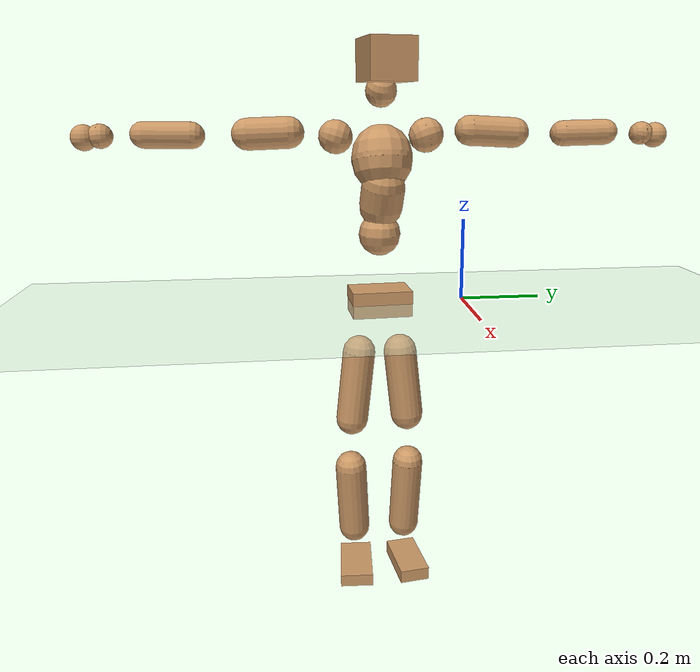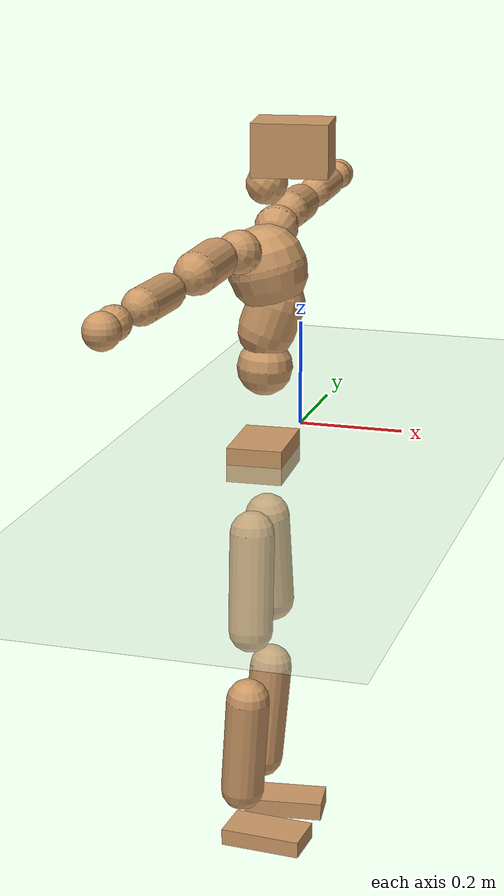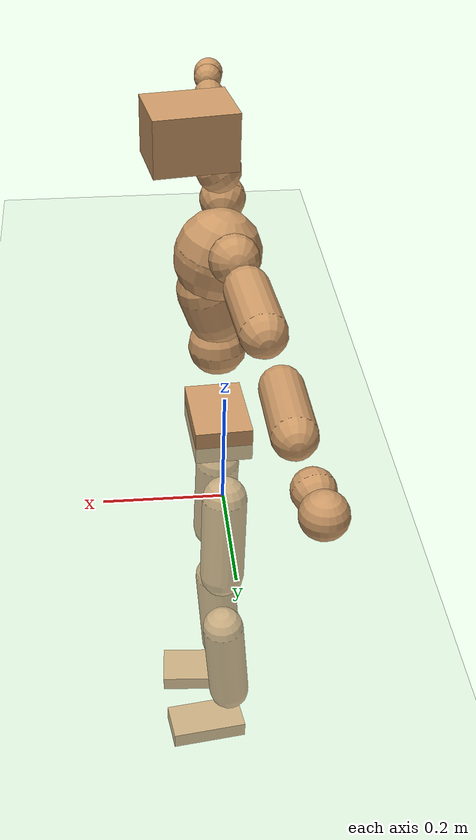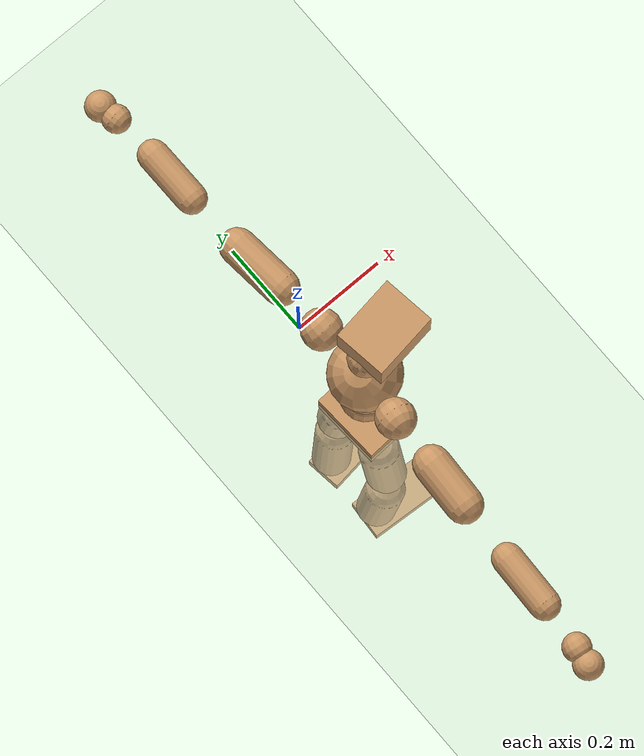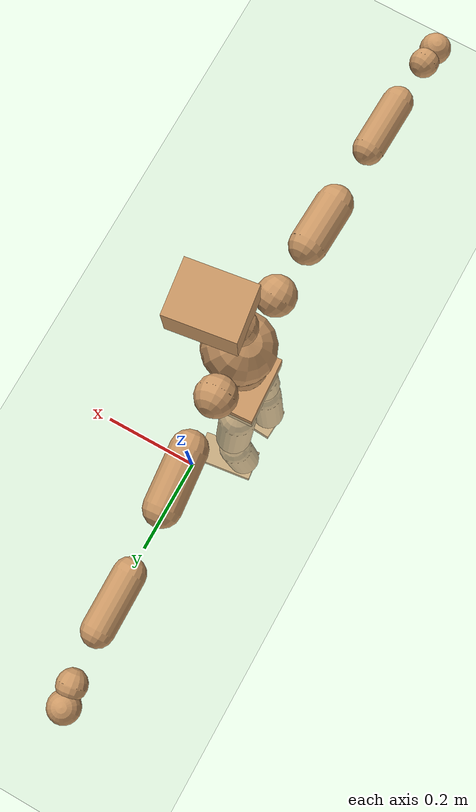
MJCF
<mujoco model="humanoid">
  <compiler coordinate="local" angle="radian"/>
  <default>
    <joint damping="0.0" armature="0.01" stiffness="0.0" limited="true"/>
    <geom conaffinity="1" condim="3" contype="7" margin="0.001" rgba="0.8 0.6 .4 1"/>
  </default>
  <asset>
    <texture type="skybox" builtin="gradient" rgb1=".4 .5 .6" rgb2="0 0 0" width="100" height="100"/>
    <texture builtin="flat" height="1278" mark="cross" markrgb="1 1 1" name="texgeom" random="0.01" rgb1="0.8 0.6 0.4" rgb2="0.8 0.6 0.4" type="cube" width="127"/>
    <texture builtin="checker" height="100" name="texplane" rgb1="0 0 0" rgb2="0.8 0.8 0.8" type="2d" width="100"/>
    <material name="MatPlane" reflectance="0.5" shininess="1" specular="1" texrepeat="60 60" texture="texplane"/>
    <material name="geom" texture="texgeom" texuniform="true"/>
  </asset>
  <worldbody>
    <light cutoff="100" diffuse="1 1 1" dir="-0 0 -1.3" directional="true" exponent="1" pos="0 0 1.3" specular=".1 .1 .1"/>
    <geom conaffinity="1" condim="3" name="floor" pos="0 0 0" rgba="0.8 0.9 0.8 1" size="100 100 .2" type="plane" material="MatPlane"/>
    <body name="Pelvis" pos="-0.0063 -0.2075 0.0082">
      <freejoint name="Pelvis"/>
      <geom type="box" contype="1" conaffinity="1" density="5359.375543" pos="-0.0059 -0.0003 -0.0104" size="0.0514 0.0744 0.032" quat="0.9996 0.0000 0.0000 0.0274" name="Pelvis"/>
      <body name="L_Hip" pos="-0.0167 0.0464 -0.0764">
        <joint name="L_Hip_x" type="hinge" pos="0 0 0" axis="1 0 0" stiffness="1600" damping="160" armature="0.02" range="-180.0000 180.0000"/>
        <joint name="L_Hip_y" type="hinge" pos="0 0 0" axis="0 1 0" stiffness="1600" damping="160" armature="0.02" range="-180.0000 180.0000"/>
        <joint name="L_Hip_z" type="hinge" pos="0 0 0" axis="0 0 1" stiffness="1600" damping="160" armature="0.02" range="-180.0000 180.0000"/>
        <geom type="capsule" contype="1" conaffinity="1" density="2040.816327" size="0.0421" fromto="0.0018 0.0075 -0.0717 0.0061 0.0261 -0.2486" name="L_Hip"/>
        <body name="L_Knee" pos="0.0079 0.0336 -0.3202">
          <joint name="L_Knee_x" type="hinge" pos="0 0 0" axis="1 0 0" stiffness="1600" damping="160" armature="0.02" range="-180.0000 180.0000"/>
          <joint name="L_Knee_y" type="hinge" pos="0 0 0" axis="0 1 0" stiffness="1600" damping="160" armature="0.02" range="-180.0000 180.0000"/>
          <joint name="L_Knee_z" type="hinge" pos="0 0 0" axis="0 0 1" stiffness="1600" damping="160" armature="0.02" range="-180.0000 180.0000"/>
          <geom type="capsule" contype="1" conaffinity="1" density="1234.567901" size="0.0406" fromto="-0.0058 -0.0028 -0.0703 -0.0221 -0.0105 -0.2669" name="L_Knee"/>
          <body name="L_Ankle" pos="-0.028 -0.0132 -0.3372">
            <joint name="L_Ankle_x" type="hinge" pos="0 0 0" axis="1 0 0" stiffness="1600" damping="160" armature="0.02" range="-180.0000 180.0000"/>
            <joint name="L_Ankle_y" type="hinge" pos="0 0 0" axis="0 1 0" stiffness="1600" damping="160" armature="0.02" range="-180.0000 180.0000"/>
            <joint name="L_Ankle_z" type="hinge" pos="0 0 0" axis="0 0 1" stiffness="1600" damping="160" armature="0.02" range="-180.0000 180.0000"/>
            <geom type="box" contype="1" conaffinity="1" density="1000" pos="0.0538 0.0070 -0.0243" size="0.0761 0.039 0.0171" quat="0.9979 0.0000 0.0000 0.0643" name="L_Ankle"/>
            <body name="L_Toe" pos="0.1076 0.0139 -0.0487">
              <joint name="L_Toe_x" type="hinge" pos="0 0 0" axis="1 0 0" stiffness="1000" damping="100" armature="0.02" range="-180.0000 180.0000"/>
              <joint name="L_Toe_y" type="hinge" pos="0 0 0" axis="0 1 0" stiffness="1000" damping="100" armature="0.02" range="-180.0000 180.0000"/>
              <joint name="L_Toe_z" type="hinge" pos="0 0 0" axis="0 0 1" stiffness="1000" damping="100" armature="0.02" range="-180.0000 180.0000"/>
              <geom type="box" contype="1" conaffinity="1" density="8812418.138296" pos="0.0000 0.0000 0.0258" size="0.0008 0.002 0.0009" quat="0.9974 0.0000 0.0000 0.0721" name="L_Toe"/>
            </body>
          </body>
        </body>
      </body>
      <body name="R_Hip" pos="-0.0131 -0.0448 -0.0752">
        <joint name="R_Hip_x" type="hinge" pos="0 0 0" axis="1 0 0" stiffness="1600" damping="160" armature="0.02" range="-180.0000 180.0000"/>
        <joint name="R_Hip_y" type="hinge" pos="0 0 0" axis="0 1 0" stiffness="1600" damping="160" armature="0.02" range="-180.0000 180.0000"/>
        <joint name="R_Hip_z" type="hinge" pos="0 0 0" axis="0 0 1" stiffness="1600" damping="160" armature="0.02" range="-180.0000 180.0000"/>
        <geom type="capsule" contype="1" conaffinity="1" density="2040.816327" size="0.0415" fromto="0.0010 -0.0079 -0.0711 0.0037 -0.0284 -0.2566" name="R_Hip"/>
        <body name="R_Knee" pos="0.0047 -0.0363 -0.3277">
          <joint name="R_Knee_x" type="hinge" pos="0 0 0" axis="1 0 0" stiffness="1600" damping="160" armature="0.02" range="-180.0000 180.0000"/>
          <joint name="R_Knee_y" type="hinge" pos="0 0 0" axis="0 1 0" stiffness="1600" damping="160" armature="0.02" range="-180.0000 180.0000"/>
          <joint name="R_Knee_z" type="hinge" pos="0 0 0" axis="0 0 1" stiffness="1600" damping="160" armature="0.02" range="-180.0000 180.0000"/>
          <geom type="capsule" contype="1" conaffinity="1" density="1234.567901" size="0.0412" fromto="-0.0054 0.0032 -0.0709 -0.0200 0.0118 -0.2628" name="R_Knee"/>
          <body name="R_Ankle" pos="-0.0254 0.015 -0.3338">
            <joint name="R_Ankle_x" type="hinge" pos="0 0 0" axis="1 0 0" stiffness="1600" damping="160" armature="0.02" range="-180.0000 180.0000"/>
            <joint name="R_Ankle_y" type="hinge" pos="0 0 0" axis="0 1 0" stiffness="1600" damping="160" armature="0.02" range="-180.0000 180.0000"/>
            <joint name="R_Ankle_z" type="hinge" pos="0 0 0" axis="0 0 1" stiffness="1600" damping="160" armature="0.02" range="-180.0000 180.0000"/>
            <geom type="box" contype="1" conaffinity="1" density="999.999981" pos="0.0549 -0.0036 -0.0193" size="0.0775 0.0424 0.016" quat="0.9995 0.0000 0.0000 -0.0325" name="R_Ankle"/>
            <body name="R_Toe" pos="0.1098 -0.0071 -0.0387">
              <joint name="R_Toe_x" type="hinge" pos="0 0 0" axis="1 0 0" stiffness="1000" damping="100" armature="0.02" range="-180.0000 180.0000"/>
              <joint name="R_Toe_y" type="hinge" pos="0 0 0" axis="0 1 0" stiffness="1000" damping="100" armature="0.02" range="-180.0000 180.0000"/>
              <joint name="R_Toe_z" type="hinge" pos="0 0 0" axis="0 0 1" stiffness="1000" damping="100" armature="0.02" range="-180.0000 180.0000"/>
              <geom type="box" contype="1" conaffinity="1" density="8868704.570627" pos="0.0000 0.0000 0.0227" size="0.0008 0.002 0.001" quat="0.9997 0.0000 0.0000 -0.0230" name="R_Toe"/>
            </body>
          </body>
        </body>
      </body>
      <body name="Torso" pos="-0.0057 -0.0036 0.0891">
        <joint name="Torso_x" type="hinge" pos="0 0 0" axis="1 0 0" stiffness="2000" damping="200" armature="0.02" range="-180.0000 180.0000"/>
        <joint name="Torso_y" type="hinge" pos="0 0 0" axis="0 1 0" stiffness="2000" damping="200" armature="0.02" range="-180.0000 180.0000"/>
        <joint name="Torso_z" type="hinge" pos="0 0 0" axis="0 0 1" stiffness="2000" damping="200" armature="0.02" range="-180.0000 180.0000"/>
        <geom type="capsule" contype="1" conaffinity="1" density="2040.816327" size="0.0512" fromto="0.0026 0.0032 0.0683 0.0027 0.0032 0.0703" name="Torso"/>
        <body name="Spine" pos="0.0053 0.0064 0.1387">
          <joint name="Spine_x" type="hinge" pos="0 0 0" axis="1 0 0" stiffness="2000" damping="200" armature="0.02" range="-180.0000 180.0000"/>
          <joint name="Spine_y" type="hinge" pos="0 0 0" axis="0 1 0" stiffness="2000" damping="200" armature="0.02" range="-180.0000 180.0000"/>
          <joint name="Spine_z" type="hinge" pos="0 0 0" axis="0 0 1" stiffness="2000" damping="200" armature="0.02" range="-180.0000 180.0000"/>
          <geom type="capsule" contype="1" conaffinity="1" density="2040.816327" size="0.0524" fromto="0.0172 0.0041 0.0493 -0.0007 -0.0002 -0.0020" name="Spine"/>
          <body name="Chest" pos="0.0165 0.0039 0.0473">
            <joint name="Chest_x" type="hinge" pos="0 0 0" axis="1 0 0" stiffness="2000" damping="200" armature="0.02" range="-180.0000 180.0000"/>
            <joint name="Chest_y" type="hinge" pos="0 0 0" axis="0 1 0" stiffness="2000" damping="200" armature="0.02" range="-180.0000 180.0000"/>
            <joint name="Chest_z" type="hinge" pos="0 0 0" axis="0 0 1" stiffness="2000" damping="200" armature="0.02" range="-180.0000 180.0000"/>
            <geom type="capsule" contype="1" conaffinity="1" density="2040.816327" size="0.073" fromto="-0.0183 -0.0015 0.0707 -0.0153 -0.0012 0.0592" name="Chest"/>
            <body name="Neck" pos="-0.0388 -0.006 0.1853">
              <joint name="Neck_x" type="hinge" pos="0 0 0" axis="1 0 0" stiffness="1000" damping="100" armature="0.02" range="-180.0000 180.0000"/>
              <joint name="Neck_y" type="hinge" pos="0 0 0" axis="0 1 0" stiffness="1000" damping="100" armature="0.02" range="-180.0000 180.0000"/>
              <joint name="Neck_z" type="hinge" pos="0 0 0" axis="0 0 1" stiffness="1000" damping="100" armature="0.02" range="-180.0000 180.0000"/>
              <geom type="capsule" contype="1" conaffinity="1" density="1000" size="0.0369" fromto="0.0221 0.0023 0.0312 0.0233 0.0024 0.0329" name="Neck"/>
              <body name="Head" pos="0.0454 0.0047 0.0641">
                <joint name="Head_x" type="hinge" pos="0 0 0" axis="1 0 0" stiffness="1000" damping="100" armature="0.02" range="-180.0000 180.0000"/>
                <joint name="Head_y" type="hinge" pos="0 0 0" axis="0 1 0" stiffness="1000" damping="100" armature="0.02" range="-180.0000 180.0000"/>
                <joint name="Head_z" type="hinge" pos="0 0 0" axis="0 0 1" stiffness="1000" damping="100" armature="0.02" range="-180.0000 180.0000"/>
                <geom type="box" contype="1" conaffinity="1" density="2249.999958" pos="0.0237 0.0033 0.0331" size="0.0682 0.0539 0.0471" quat="0.9976 0.0000 0.0000 0.0699" name="Head"/>
              </body>
            </body>
            <body name="L_Thorax" pos="-0.0303 0.0648 0.1035">
              <joint name="L_Thorax_x" type="hinge" pos="0 0 0" axis="1 0 0" stiffness="1000" damping="100" armature="0.02" range="-180.0000 180.0000"/>
              <joint name="L_Thorax_y" type="hinge" pos="0 0 0" axis="0 1 0" stiffness="1000" damping="100" armature="0.02" range="-180.0000 180.0000"/>
              <joint name="L_Thorax_z" type="hinge" pos="0 0 0" axis="0 0 1" stiffness="1000" damping="100" armature="0.02" range="-180.0000 180.0000"/>
              <geom type="capsule" contype="1" conaffinity="1" density="1000" size="0.0408" fromto="-0.0007 0.0412 0.0132 -0.0008 0.0431 0.0138" name="L_Thorax"/>
              <body name="L_Shoulder" pos="-0.0015 0.0842 0.0271">
                <joint name="L_Shoulder_x" type="hinge" pos="0 0 0" axis="1 0 0" stiffness="1000" damping="100" armature="0.02" range="-720.0000 720.0000"/>
                <joint name="L_Shoulder_y" type="hinge" pos="0 0 0" axis="0 1 0" stiffness="1000" damping="100" armature="0.02" range="-720.0000 720.0000"/>
                <joint name="L_Shoulder_z" type="hinge" pos="0 0 0" axis="0 0 1" stiffness="1000" damping="100" armature="0.02" range="-720.0000 720.0000"/>
                <geom type="capsule" contype="1" conaffinity="1" density="1000" size="0.0359" fromto="-0.0059 0.0655 -0.0035 -0.0162 0.1791 -0.0095" name="L_Shoulder"/>
                <body name="L_Elbow" pos="-0.0222 0.2446 -0.013">
                  <joint name="L_Elbow_x" type="hinge" pos="0 0 0" axis="1 0 0" stiffness="1000" damping="100" armature="0.02" range="-720.0000 720.0000"/>
                  <joint name="L_Elbow_y" type="hinge" pos="0 0 0" axis="0 1 0" stiffness="1000" damping="100" armature="0.02" range="-720.0000 720.0000"/>
                  <joint name="L_Elbow_z" type="hinge" pos="0 0 0" axis="0 0 1" stiffness="1000" damping="100" armature="0.02" range="-720.0000 720.0000"/>
                  <geom type="capsule" contype="1" conaffinity="1" density="1000" size="0.0309" fromto="-0.0008 0.0609 0.0013 -0.0021 0.1699 0.0037" name="L_Elbow"/>
                  <body name="L_Wrist" pos="-0.0029 0.2308 0.0051">
                    <joint name="L_Wrist_x" type="hinge" pos="0 0 0" axis="1 0 0" stiffness="600" damping="60" armature="0.02" range="-180.0000 180.0000"/>
                    <joint name="L_Wrist_y" type="hinge" pos="0 0 0" axis="0 1 0" stiffness="600" damping="60" armature="0.02" range="-180.0000 180.0000"/>
                    <joint name="L_Wrist_z" type="hinge" pos="0 0 0" axis="0 0 1" stiffness="600" damping="60" armature="0.02" range="-180.0000 180.0000"/>
                    <geom type="capsule" contype="1" conaffinity="1" density="1000" size="0.0282" fromto="-0.0063 0.0375 -0.0047 -0.0066 0.0395 -0.0049" name="L_Wrist"/>
                    <body name="L_Hand" pos="-0.0129 0.0771 -0.0095">
                      <joint name="L_Hand_x" type="hinge" pos="0 0 0" axis="1 0 0" stiffness="600" damping="60" armature="0.02" range="-180.0000 180.0000"/>
                      <joint name="L_Hand_y" type="hinge" pos="0 0 0" axis="0 1 0" stiffness="600" damping="60" armature="0.02" range="-180.0000 180.0000"/>
                      <joint name="L_Hand_z" type="hinge" pos="0 0 0" axis="0 0 1" stiffness="600" damping="60" armature="0.02" range="-180.0000 180.0000"/>
                      <geom type="sphere" contype="1" conaffinity="1" density="1000" size="0.0309" pos="0.0000 0.0000 0.0000" name="L_Hand"/>
                    </body>
                  </body>
                </body>
              </body>
            </body>
            <body name="R_Thorax" pos="-0.0315 -0.0669 0.1009">
              <joint name="R_Thorax_x" type="hinge" pos="0 0 0" axis="1 0 0" stiffness="1000" damping="100" armature="0.02" range="-180.0000 180.0000"/>
              <joint name="R_Thorax_y" type="hinge" pos="0 0 0" axis="0 1 0" stiffness="1000" damping="100" armature="0.02" range="-180.0000 180.0000"/>
              <joint name="R_Thorax_z" type="hinge" pos="0 0 0" axis="0 0 1" stiffness="1000" damping="100" armature="0.02" range="-180.0000 180.0000"/>
              <geom type="capsule" contype="1" conaffinity="1" density="1000" size="0.0397" fromto="-0.0033 -0.0420 0.0127 -0.0035 -0.0439 0.0133" name="R_Thorax"/>
              <body name="R_Shoulder" pos="-0.0068 -0.0859 0.026">
                <joint name="R_Shoulder_x" type="hinge" pos="0 0 0" axis="1 0 0" stiffness="1000" damping="100" armature="0.02" range="-720.0000 720.0000"/>
                <joint name="R_Shoulder_y" type="hinge" pos="0 0 0" axis="0 1 0" stiffness="1000" damping="100" armature="0.02" range="-720.0000 720.0000"/>
                <joint name="R_Shoulder_z" type="hinge" pos="0 0 0" axis="0 0 1" stiffness="1000" damping="100" armature="0.02" range="-720.0000 720.0000"/>
                <geom type="capsule" contype="1" conaffinity="1" density="1000" size="0.037" fromto="-0.0026 -0.0669 -0.0027 -0.0063 -0.1633 -0.0065" name="R_Shoulder"/>
                <body name="R_Elbow" pos="-0.0088 -0.2302 -0.0092">
                  <joint name="R_Elbow_x" type="hinge" pos="0 0 0" axis="1 0 0" stiffness="1000" damping="100" armature="0.02" range="-720.0000 720.0000"/>
                  <joint name="R_Elbow_y" type="hinge" pos="0 0 0" axis="0 1 0" stiffness="1000" damping="100" armature="0.02" range="-720.0000 720.0000"/>
                  <joint name="R_Elbow_z" type="hinge" pos="0 0 0" axis="0 0 1" stiffness="1000" damping="100" armature="0.02" range="-720.0000 720.0000"/>
                  <geom type="capsule" contype="1" conaffinity="1" density="1000" size="0.0306" fromto="-0.0021 -0.0606 0.0007 -0.0059 -0.1703 0.0019" name="R_Elbow"/>
                  <body name="R_Wrist" pos="-0.008 -0.2308 0.0026">
                    <joint name="R_Wrist_x" type="hinge" pos="0 0 0" axis="1 0 0" stiffness="600" damping="60" armature="0.02" range="-180.0000 180.0000"/>
                    <joint name="R_Wrist_y" type="hinge" pos="0 0 0" axis="0 1 0" stiffness="600" damping="60" armature="0.02" range="-180.0000 180.0000"/>
                    <joint name="R_Wrist_z" type="hinge" pos="0 0 0" axis="0 0 1" stiffness="600" damping="60" armature="0.02" range="-180.0000 180.0000"/>
                    <geom type="capsule" contype="1" conaffinity="1" density="1000" size="0.0281" fromto="-0.0045 -0.0367 -0.0033 -0.0048 -0.0387 -0.0035" name="R_Wrist"/>
                    <body name="R_Hand" pos="-0.0093 -0.0754 -0.0068">
                      <joint name="R_Hand_x" type="hinge" pos="0 0 0" axis="1 0 0" stiffness="600" damping="60" armature="0.02" range="-180.0000 180.0000"/>
                      <joint name="R_Hand_y" type="hinge" pos="0 0 0" axis="0 1 0" stiffness="600" damping="60" armature="0.02" range="-180.0000 180.0000"/>
                      <joint name="R_Hand_z" type="hinge" pos="0 0 0" axis="0 0 1" stiffness="600" damping="60" armature="0.02" range="-180.0000 180.0000"/>
                      <geom type="sphere" contype="1" conaffinity="1" density="1000" size="0.0300" pos="0.0000 0.0000 0.0000" name="R_Hand"/>
                    </body>
                  </body>
                </body>
              </body>
            </body>
          </body>
        </body>
      </body>
    </body>
  </worldbody>
  <actuator>
    <motor name="L_Hip_x" joint="L_Hip_x" gear="500"/>
    <motor name="L_Hip_y" joint="L_Hip_y" gear="500"/>
    <motor name="L_Hip_z" joint="L_Hip_z" gear="500"/>
    <motor name="L_Knee_x" joint="L_Knee_x" gear="500"/>
    <motor name="L_Knee_y" joint="L_Knee_y" gear="500"/>
    <motor name="L_Knee_z" joint="L_Knee_z" gear="500"/>
    <motor name="L_Ankle_x" joint="L_Ankle_x" gear="500"/>
    <motor name="L_Ankle_y" joint="L_Ankle_y" gear="500"/>
    <motor name="L_Ankle_z" joint="L_Ankle_z" gear="500"/>
    <motor name="L_Toe_x" joint="L_Toe_x" gear="500"/>
    <motor name="L_Toe_y" joint="L_Toe_y" gear="500"/>
    <motor name="L_Toe_z" joint="L_Toe_z" gear="500"/>
    <motor name="R_Hip_x" joint="R_Hip_x" gear="500"/>
    <motor name="R_Hip_y" joint="R_Hip_y" gear="500"/>
    <motor name="R_Hip_z" joint="R_Hip_z" gear="500"/>
    <motor name="R_Knee_x" joint="R_Knee_x" gear="500"/>
    <motor name="R_Knee_y" joint="R_Knee_y" gear="500"/>
    <motor name="R_Knee_z" joint="R_Knee_z" gear="500"/>
    <motor name="R_Ankle_x" joint="R_Ankle_x" gear="500"/>
    <motor name="R_Ankle_y" joint="R_Ankle_y" gear="500"/>
    <motor name="R_Ankle_z" joint="R_Ankle_z" gear="500"/>
    <motor name="R_Toe_x" joint="R_Toe_x" gear="500"/>
    <motor name="R_Toe_y" joint="R_Toe_y" gear="500"/>
    <motor name="R_Toe_z" joint="R_Toe_z" gear="500"/>
    <motor name="Torso_x" joint="Torso_x" gear="500"/>
    <motor name="Torso_y" joint="Torso_y" gear="500"/>
    <motor name="Torso_z" joint="Torso_z" gear="500"/>
    <motor name="Spine_x" joint="Spine_x" gear="500"/>
    <motor name="Spine_y" joint="Spine_y" gear="500"/>
    <motor name="Spine_z" joint="Spine_z" gear="500"/>
    <motor name="Chest_x" joint="Chest_x" gear="500"/>
    <motor name="Chest_y" joint="Chest_y" gear="500"/>
    <motor name="Chest_z" joint="Chest_z" gear="500"/>
    <motor name="Neck_x" joint="Neck_x" gear="500"/>
    <motor name="Neck_y" joint="Neck_y" gear="500"/>
    <motor name="Neck_z" joint="Neck_z" gear="500"/>
    <motor name="Head_x" joint="Head_x" gear="500"/>
    <motor name="Head_y" joint="Head_y" gear="500"/>
    <motor name="Head_z" joint="Head_z" gear="500"/>
    <motor name="L_Thorax_x" joint="L_Thorax_x" gear="500"/>
    <motor name="L_Thorax_y" joint="L_Thorax_y" gear="500"/>
    <motor name="L_Thorax_z" joint="L_Thorax_z" gear="500"/>
    <motor name="L_Shoulder_x" joint="L_Shoulder_x" gear="500"/>
    <motor name="L_Shoulder_y" joint="L_Shoulder_y" gear="500"/>
    <motor name="L_Shoulder_z" joint="L_Shoulder_z" gear="500"/>
    <motor name="L_Elbow_x" joint="L_Elbow_x" gear="500"/>
    <motor name="L_Elbow_y" joint="L_Elbow_y" gear="500"/>
    <motor name="L_Elbow_z" joint="L_Elbow_z" gear="500"/>
    <motor name="L_Wrist_x" joint="L_Wrist_x" gear="500"/>
    <motor name="L_Wrist_y" joint="L_Wrist_y" gear="500"/>
    <motor name="L_Wrist_z" joint="L_Wrist_z" gear="500"/>
    <motor name="L_Hand_x" joint="L_Hand_x" gear="500"/>
    <motor name="L_Hand_y" joint="L_Hand_y" gear="500"/>
    <motor name="L_Hand_z" joint="L_Hand_z" gear="500"/>
    <motor name="R_Thorax_x" joint="R_Thorax_x" gear="500"/>
    <motor name="R_Thorax_y" joint="R_Thorax_y" gear="500"/>
    <motor name="R_Thorax_z" joint="R_Thorax_z" gear="500"/>
    <motor name="R_Shoulder_x" joint="R_Shoulder_x" gear="500"/>
    <motor name="R_Shoulder_y" joint="R_Shoulder_y" gear="500"/>
    <motor name="R_Shoulder_z" joint="R_Shoulder_z" gear="500"/>
    <motor name="R_Elbow_x" joint="R_Elbow_x" gear="500"/>
    <motor name="R_Elbow_y" joint="R_Elbow_y" gear="500"/>
    <motor name="R_Elbow_z" joint="R_Elbow_z" gear="500"/>
    <motor name="R_Wrist_x" joint="R_Wrist_x" gear="500"/>
    <motor name="R_Wrist_y" joint="R_Wrist_y" gear="500"/>
    <motor name="R_Wrist_z" joint="R_Wrist_z" gear="500"/>
    <motor name="R_Hand_x" joint="R_Hand_x" gear="500"/>
    <motor name="R_Hand_y" joint="R_Hand_y" gear="500"/>
    <motor name="R_Hand_z" joint="R_Hand_z" gear="500"/>
  </actuator>
  <contact>
    <exclude body1="Torso" body2="Chest"/>
    <exclude body1="Head" body2="Chest"/>
    <exclude body1="R_Knee" body2="R_Toe"/>
    <exclude body1="R_Knee" body2="L_Ankle"/>
    <exclude body1="R_Knee" body2="L_Toe"/>
    <exclude body1="L_Knee" body2="L_Toe"/>
    <exclude body1="L_Knee" body2="R_Ankle"/>
    <exclude body1="L_Knee" body2="R_Toe"/>
    <exclude body1="L_Shoulder" body2="Chest"/>
    <exclude body1="R_Shoulder" body2="Chest"/>
  </contact>
  <sensor/>
  <size njmax="700" nconmax="700"/>
</mujoco>
